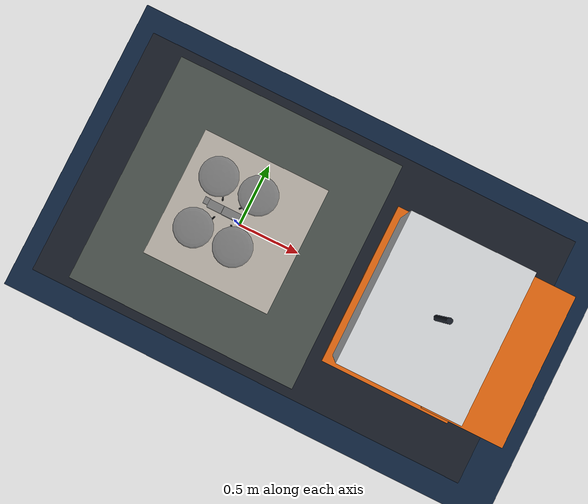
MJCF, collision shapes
<mujoco model="x2_landing_offshore">
  <compiler autolimits="true" assetdir="../meshes/skydio_x2"/>
  <option timestep="0.002" density="1.225" viscosity="1.8e-5" integrator="implicitfast"/>
  <visual>
    <global offwidth="1280" offheight="720"/>
  </visual>

  <default>
    <default class="x2">
      <geom mass="0"/>
      <motor ctrlrange="0 13"/>
      <mesh scale="0.01 0.01 0.01"/>
      <default class="visual">
        <geom group="2" type="mesh" contype="0" conaffinity="0"/>
      </default>
      <default class="collision">
        <geom group="3" type="box"/>
        <default class="rotor">
          <geom type="ellipsoid" size=".13 .13 .01"/>
        </default>
      </default>
      <site group="5"/>
    </default>
    <default class="leg">
      <geom type="capsule" size="0.006" mass="0.008" rgba="0.05 0.05 0.05 1"
            contype="1" conaffinity="1" condim="4" friction="1.2 0.05 0.001"
            solref="0.02 1.5" solimp="0.95 0.99 0.001"/>
    </default>
    <default class="foot">
      <geom type="sphere" size="0.013" mass="0.004" rgba="0.05 0.05 0.05 1"
            contype="1" conaffinity="1" condim="4" friction="3.0 0.15 0.003"
            solref="0.025 1.8" solimp="0.96 0.99 0.001"/>
    </default>
  </default>

  <asset>
    <texture type="skybox" builtin="gradient" rgb1="0.45 0.6 0.78" rgb2="0.05 0.1 0.2" width="512" height="3072"/>
    <texture type="2d" name="sea" builtin="checker" mark="none" rgb1="0.08 0.18 0.30"
             rgb2="0.05 0.12 0.22" width="300" height="300"/>
    <material name="sea" texture="sea" texuniform="true" texrepeat="8 8" reflectance="0.35"/>
    <texture type="2d" file="X2_lowpoly_texture_SpinningProps_1024.png"/>
    <material name="phong3SG" texture="X2_lowpoly_texture_SpinningProps_1024"/>
    <material name="invisible" rgba="0 0 0 0"/>
    <mesh class="x2" file="X2_lowpoly.obj"/>
    <texture name="aruco_deck" type="2d" file="../../textures/aruco_deck.png"/>
    <material name="deck_aruco" texture="aruco_deck" texuniform="false" texrepeat="1 1"/>
    <!-- OSV palette -->
    <material name="osv_orange" rgba="0.93 0.42 0.06 1" reflectance="0.1"/>
    <material name="osv_white" rgba="0.88 0.89 0.90 1"/>
    <material name="osv_dark" rgba="0.10 0.12 0.16 1"/>
    <material name="osv_deck" rgba="0.30 0.33 0.31 1"/>
  </asset>

  <worldbody>
    <light pos="0 0 4" dir="0 0 -1" directional="true" diffuse="0.8 0.8 0.8"
           ambient="0.4 0.4 0.4" castshadow="false"/>
    <light pos="2 -2 3" dir="-0.5 0.5 -1" diffuse="0.3 0.3 0.3" castshadow="false"/>
    <geom name="floor" size="0 0 0.05" type="plane" material="sea"/>

    <body name="platform" pos="0 0 0" gravcomp="1">
      <joint name="plat_x" type="slide" axis="1 0 0" damping="2000"/>
      <joint name="plat_y" type="slide" axis="0 1 0" damping="2000"/>
      <joint name="plat_z" type="slide" axis="0 0 1" damping="2000"/>
      <joint name="plat_yaw" type="hinge" axis="0 0 1" damping="400"/>
      <joint name="plat_pitch" type="hinge" axis="0 1 0" damping="400"/>
      <joint name="plat_roll" type="hinge" axis="1 0 0" damping="400"/>

      <!-- mass/inertia ballast (invisible, compact = validated chassis) -->
      <geom name="ballast" type="box" size="0.9 0.9 0.125" pos="0 0 0.125" mass="60"
            material="invisible" contype="0" conaffinity="0"/>
      <!-- orange OSV hull + raised bow (light visual; extends fore of the helideck) -->
      <geom name="hull" type="box" size="1.7 0.95 0.13" pos="0.55 0 0.135" mass="1.0"
            material="osv_orange" contype="0" conaffinity="0"/>
      <geom name="hull_belt" type="box" size="1.72 0.97 0.03" pos="0.55 0 0.245" mass="0.2"
            material="osv_dark" contype="0" conaffinity="0"/>
      <!-- bow: COLLIDABLE superstructure (P3) so sense-and-avoid acts against true contact, not a ghost -->
      <geom name="bow" type="box" size="0.32 0.6 0.12" pos="2.1 0 0.235" mass="0.3"
            material="osv_orange" contype="1" conaffinity="1" condim="3"/>

      <!-- helideck: the landing surface (collision). IDENTICAL to the validated ship deck (1.8 m, mass 5,
           same friction/solref) so landing behaviour is unchanged. world.py keys touchdown on "deck". -->
      <geom name="deck" type="box" size="0.9 0.9 0.025" pos="0 0 0.275" mass="5"
            material="osv_deck" contype="1" conaffinity="1" condim="4" friction="3.0 0.1 0.002"
            solref="0.02 1.5" solimp="0.96 0.99 0.001"/>
      <geom name="fiducial" type="box" size="0.5 0.5 0.001" pos="0 0 0.301"
            material="deck_aruco" contype="0" conaffinity="0"/>
      <site name="deck_center" pos="0 0 0.303" size="0.02" rgba="1 0.85 0.1 1" group="4"/>

      <geom name="wheelhouse_base" type="box" size="0.5 0.62 0.03" pos="1.5 0 0.30" mass="0.3"
            material="osv_orange" contype="1" conaffinity="1" condim="3"/>
      <geom name="wheelhouse" type="box" size="0.45 0.55 0.30" pos="1.5 0 0.62" mass="0.5"
            material="osv_white" contype="1" conaffinity="1" condim="3"/>
      <geom name="windows" type="box" size="0.38 0.56 0.08" pos="1.5 0 0.66" mass="0.05"
            material="osv_dark" contype="0" conaffinity="0"/>
      <geom name="mast" type="cylinder" size="0.02 0.28" pos="1.5 0 1.1" mass="0.05"
            material="osv_dark" contype="1" conaffinity="1" condim="3"/>
    </body>

    <body name="gimbal" mocap="true" pos="0 0 0.91">
      <camera name="down" pos="0 0 0" fovy="90" mode="fixed"/>
    </body>

    <body name="x2" pos="0 0 1.0" childclass="x2">
      <freejoint name="root"/>
      <camera name="track" pos="-1 0 .5" xyaxes="0 -1 0 1 0 2" mode="trackcom"/>
      <site name="imu" pos="0 0 .02"/>
      <site name="rangefinder" pos="0 0 -.03" quat="0 1 0 0" size="0.005" group="5"/>

      <geom material="phong3SG" mesh="X2_lowpoly" class="visual" quat="0 0 1 1"/>
      <geom class="collision" size=".06 .027 .02" pos=".04 0 .02"/>
      <geom class="collision" size=".06 .027 .02" pos=".04 0 .06"/>
      <geom class="collision" size=".05 .027 .02" pos="-.07 0 .065"/>
      <geom class="collision" size=".023 .017 .01" pos="-.137 .008 .065" quat="1 0 0 1"/>

      <geom name="rotor1" class="rotor" pos="-.14 -.18 .05" mass=".25"/>
      <geom name="rotor2" class="rotor" pos="-.14 .18 .05" mass=".25"/>
      <geom name="rotor3" class="rotor" pos=".14 .18 .08" mass=".25"/>
      <geom name="rotor4" class="rotor" pos=".14 -.18 .08" mass=".25"/>
      <geom size=".16 .04 .02" pos="0 0 0.02" type="ellipsoid" mass=".325" class="visual" material="invisible"/>

      <site name="thrust1" pos="-.14 -.18 .05"/>
      <site name="thrust2" pos="-.14 .18 .05"/>
      <site name="thrust3" pos=".14 .18 .08"/>
      <site name="thrust4" pos=".14 -.18 .08"/>

      <geom class="leg" name="leg_fl" fromto=".06 .06 -.01 .10 .12 -.13"/>
      <geom class="leg" name="leg_fr" fromto=".06 -.06 -.01 .10 -.12 -.13"/>
      <geom class="leg" name="leg_rl" fromto="-.06 .06 -.01 -.10 .12 -.13"/>
      <geom class="leg" name="leg_rr" fromto="-.06 -.06 -.01 -.10 -.12 -.13"/>
      <geom class="foot" name="foot_fl" pos=".10 .12 -.13"/>
      <geom class="foot" name="foot_fr" pos=".10 -.12 -.13"/>
      <geom class="foot" name="foot_rl" pos="-.10 .12 -.13"/>
      <geom class="foot" name="foot_rr" pos="-.10 -.12 -.13"/>
    </body>
  </worldbody>

  <actuator>
    <motor class="x2" name="thrust1" site="thrust1" gear="0 0 1 0 0  .0201"/>
    <motor class="x2" name="thrust2" site="thrust2" gear="0 0 1 0 0 -.0201"/>
    <motor class="x2" name="thrust3" site="thrust3" gear="0 0 1 0 0  .0201"/>
    <motor class="x2" name="thrust4" site="thrust4" gear="0 0 1 0 0 -.0201"/>
    <position name="plat_x_srv" joint="plat_x" kp="15000"/>
    <position name="plat_y_srv" joint="plat_y" kp="15000"/>
    <position name="plat_z_srv" joint="plat_z" kp="15000"/>
    <position name="plat_yaw_srv" joint="plat_yaw" kp="5000"/>
    <position name="plat_pitch_srv" joint="plat_pitch" kp="5000"/>
    <position name="plat_roll_srv" joint="plat_roll" kp="5000"/>
  </actuator>

  <sensor>
    <gyro name="body_gyro" site="imu"/>
    <accelerometer name="body_linacc" site="imu"/>
    <framequat name="body_quat" objtype="site" objname="imu"/>
    <rangefinder name="altitude" site="rangefinder"/>
  </sensor>

  <keyframe>
    <key name="hover" qpos="0 0 0 0 0 0 0 0 1.0 1 0 0 0"
         ctrl="3.368 3.368 3.368 3.368 0 0 0 0 0 0"/>
  </keyframe>
</mujoco>
